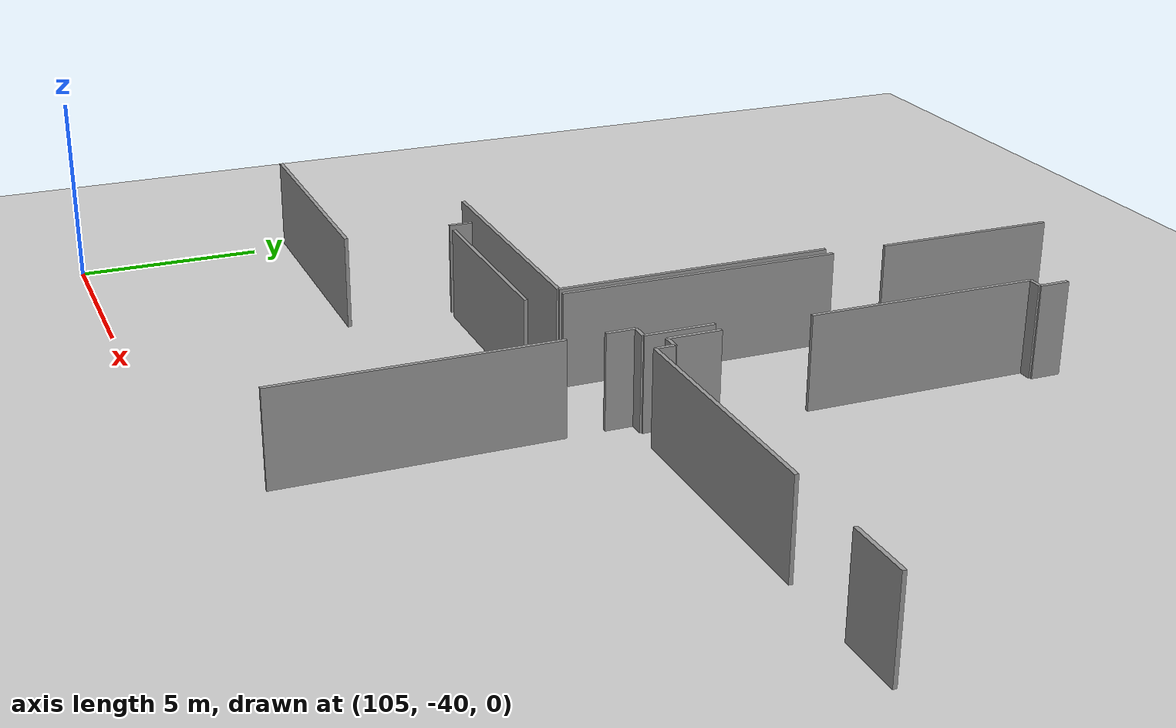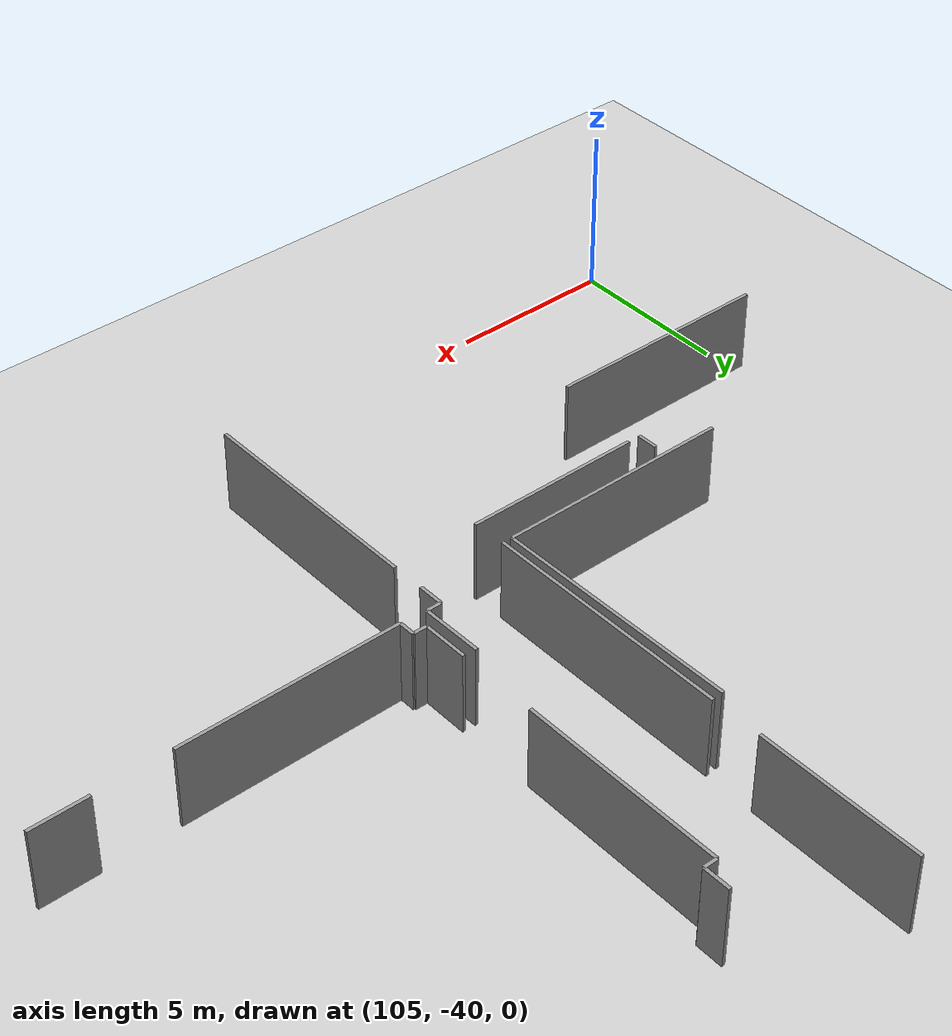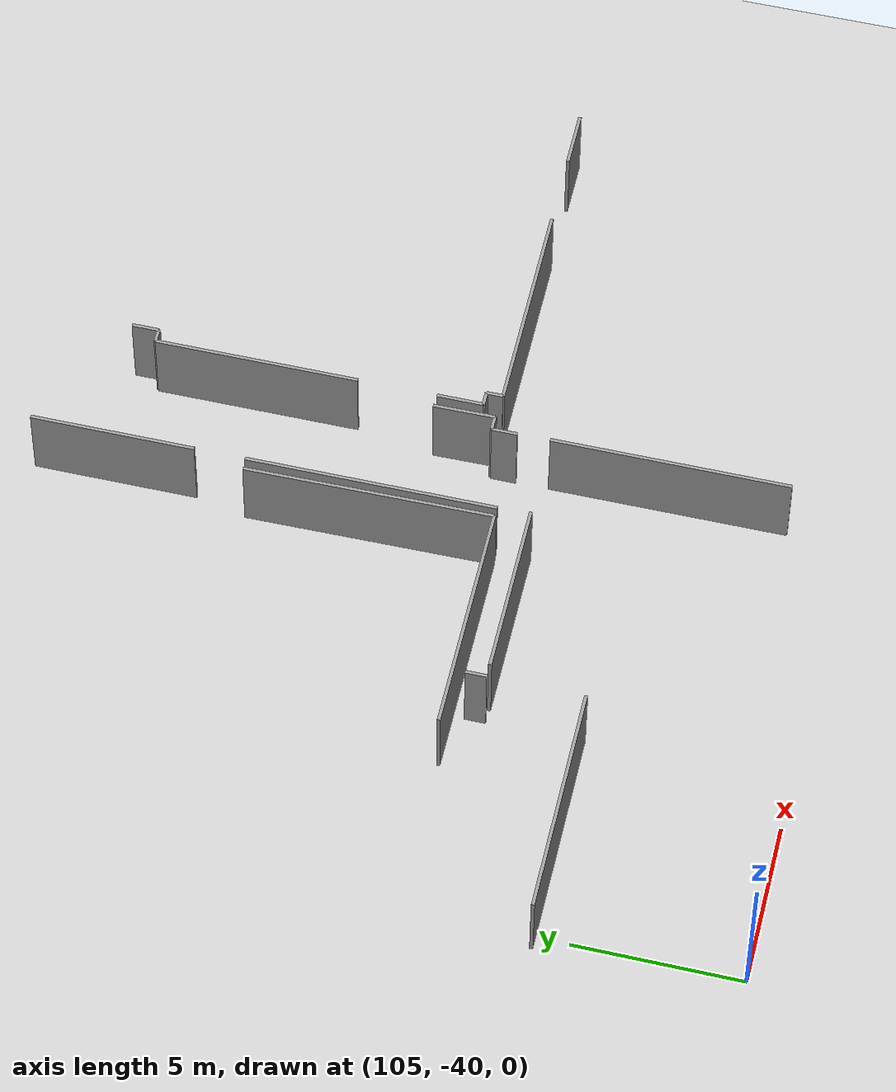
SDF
<sdf version="1.6">
 <world name="default">
  <model name="ground_plane">
   <static>1</static>
   <link name="link">
    <collision name="collision">
     <geometry><plane><normal>0 0 1</normal><size>100 100</size></plane></geometry>
     <surface><friction><ode><mu>100</mu><mu2>50</mu2></ode></friction></surface>
    </collision>
    <visual name="visual">
     <cast_shadows>0</cast_shadows>
     <geometry><plane><normal>0 0 1</normal><size>100 100</size></plane></geometry>
     <material>
      <script><uri>file://media/materials/scripts/gazebo.material</uri><name>Gazebo/Grey</name></script>
     </material>
    </visual>
   </link>
  </model>
  <model name="50015848">
   <static>1</static>
   <link name="Wall_1208">
    <collision name="Wall_1208_Collision">
     <geometry><box><size>1.72027732494 0.1 2.5</size></box></geometry>
     <pose>0.860138662472 0 1.25 0 0 0</pose>
    </collision>
    <visual name="Wall_1208_Visual">
     <pose>0.860138662472 0 1.25 0 0 0</pose>
     <geometry><box><size>1.72027732494 0.1 2.5</size></box></geometry>
     <material>
      <script><uri>file://media/materials/scripts/gazebo.material</uri><name>Gazebo/Grey</name></script>
      <ambient>1 1 1 1</ambient>
     </material>
    </visual>
    <pose>263.464278238 -73.1988150892 0 0 0 3.14159265359</pose>
   </link>
   <link name="Wall_1209">
    <collision name="Wall_1209_Collision">
     <geometry><box><size>6.6426047739 0.1 2.5</size></box></geometry>
     <pose>3.32130238695 0 1.25 0 0 0</pose>
    </collision>
    <visual name="Wall_1209_Visual">
     <pose>3.32130238695 0 1.25 0 0 0</pose>
     <geometry><box><size>6.6426047739 0.1 2.5</size></box></geometry>
     <material>
      <script><uri>file://media/materials/scripts/gazebo.material</uri><name>Gazebo/Grey</name></script>
      <ambient>1 1 1 1</ambient>
     </material>
    </visual>
    <pose>259.498506175 -73.1988150892 0 0 0 3.14159265359</pose>
   </link>
   <link name="Wall_1210">
    <collision name="Wall_1210_Collision">
     <geometry><box><size>0.496038668181 0.1 2.5</size></box></geometry>
     <pose>0.24801933409 0 1.25 0 0 0</pose>
    </collision>
    <visual name="Wall_1210_Visual">
     <pose>0.24801933409 0 1.25 0 0 0</pose>
     <geometry><box><size>0.496038668181 0.1 2.5</size></box></geometry>
     <material>
      <script><uri>file://media/materials/scripts/gazebo.material</uri><name>Gazebo/Grey</name></script>
      <ambient>1 1 1 1</ambient>
     </material>
    </visual>
    <pose>252.855901401 -73.1988150892 0 0 0 1.57079632679</pose>
   </link>
   <link name="Wall_1211">
    <collision name="Wall_1211_Collision">
     <geometry><box><size>0.42118884357 0.1 2.5</size></box></geometry>
     <pose>0.210594421785 0 1.25 0 0 0</pose>
    </collision>
    <visual name="Wall_1211_Visual">
     <pose>0.210594421785 0 1.25 0 0 0</pose>
     <geometry><box><size>0.42118884357 0.1 2.5</size></box></geometry>
     <material>
      <script><uri>file://media/materials/scripts/gazebo.material</uri><name>Gazebo/Grey</name></script>
      <ambient>1 1 1 1</ambient>
     </material>
    </visual>
    <pose>252.855901401 -72.702776421 0 0 0 3.14159265359</pose>
   </link>
   <link name="Wall_1212">
    <collision name="Wall_1212_Collision">
     <geometry><box><size>1.39271419419 0.1 2.5</size></box></geometry>
     <pose>0.696357097095 0 1.25 0 0 0</pose>
    </collision>
    <visual name="Wall_1212_Visual">
     <pose>0.696357097095 0 1.25 0 0 0</pose>
     <geometry><box><size>1.39271419419 0.1 2.5</size></box></geometry>
     <material>
      <script><uri>file://media/materials/scripts/gazebo.material</uri><name>Gazebo/Grey</name></script>
      <ambient>1 1 1 1</ambient>
     </material>
    </visual>
    <pose>252.434712558 -72.702776421 0 0 0 1.57079632679</pose>
   </link>
   <link name="Wall_1213">
    <collision name="Wall_1213_Collision">
     <geometry><box><size>6.13413342298 0.1 2.5</size></box></geometry>
     <pose>3.06706671149 0 1.25 0 0 0</pose>
    </collision>
    <visual name="Wall_1213_Visual">
     <pose>3.06706671149 0 1.25 0 0 0</pose>
     <geometry><box><size>6.13413342298 0.1 2.5</size></box></geometry>
     <material>
      <script><uri>file://media/materials/scripts/gazebo.material</uri><name>Gazebo/Grey</name></script>
      <ambient>1 1 1 1</ambient>
     </material>
    </visual>
    <pose>252.434712558 -68.9285691631 0 0 0 1.57079632679</pose>
   </link>
   <link name="Wall_1214">
    <collision name="Wall_1214_Collision">
     <geometry><box><size>0.405965150429 0.1 2.5</size></box></geometry>
     <pose>0.202982575215 0 1.25 0 0 0</pose>
    </collision>
    <visual name="Wall_1214_Visual">
     <pose>0.202982575215 0 1.25 0 0 0</pose>
     <geometry><box><size>0.405965150429 0.1 2.5</size></box></geometry>
     <material>
      <script><uri>file://media/materials/scripts/gazebo.material</uri><name>Gazebo/Grey</name></script>
      <ambient>1 1 1 1</ambient>
     </material>
    </visual>
    <pose>252.434712558 -62.7944357402 0 0 0 0.0</pose>
   </link>
   <link name="Wall_1215">
    <collision name="Wall_1215_Collision">
     <geometry><box><size>0.812437757296 0.1 2.5</size></box></geometry>
     <pose>0.406218878648 0 1.25 0 0 0</pose>
    </collision>
    <visual name="Wall_1215_Visual">
     <pose>0.406218878648 0 1.25 0 0 0</pose>
     <geometry><box><size>0.812437757296 0.1 2.5</size></box></geometry>
     <material>
      <script><uri>file://media/materials/scripts/gazebo.material</uri><name>Gazebo/Grey</name></script>
      <ambient>1 1 1 1</ambient>
     </material>
    </visual>
    <pose>252.840677708 -62.7944357402 0 0 0 1.57079632679</pose>
   </link>
   <link name="Wall_1221">
    <collision name="Wall_1221_Collision">
     <geometry><box><size>0.441487101092 0.1 2.5</size></box></geometry>
     <pose>0.220743550546 0 1.25 0 0 0</pose>
    </collision>
    <visual name="Wall_1221_Visual">
     <pose>0.220743550546 0 1.25 0 0 0</pose>
     <geometry><box><size>0.441487101092 0.1 2.5</size></box></geometry>
     <material>
      <script><uri>file://media/materials/scripts/gazebo.material</uri><name>Gazebo/Grey</name></script>
      <ambient>1 1 1 1</ambient>
     </material>
    </visual>
    <pose>252.074418487 -73.1328457523 0 0 0 3.14159265359</pose>
   </link>
   <link name="Wall_1222">
    <collision name="Wall_1222_Collision">
     <geometry><box><size>0.767274134311 0.1 2.5</size></box></geometry>
     <pose>0.383637067156 0 1.25 0 0 0</pose>
    </collision>
    <visual name="Wall_1222_Visual">
     <pose>0.383637067156 0 1.25 0 0 0</pose>
     <geometry><box><size>0.767274134311 0.1 2.5</size></box></geometry>
     <material>
      <script><uri>file://media/materials/scripts/gazebo.material</uri><name>Gazebo/Grey</name></script>
      <ambient>1 1 1 1</ambient>
     </material>
    </visual>
    <pose>251.632931386 -73.1328457523 0 0 0 -1.57079632679</pose>
   </link>
   <link name="Wall_1223">
    <collision name="Wall_1223_Collision">
     <geometry><box><size>7.50147479527 0.1 2.5</size></box></geometry>
     <pose>3.75073739764 0 1.25 0 0 0</pose>
    </collision>
    <visual name="Wall_1223_Visual">
     <pose>3.75073739764 0 1.25 0 0 0</pose>
     <geometry><box><size>7.50147479527 0.1 2.5</size></box></geometry>
     <material>
      <script><uri>file://media/materials/scripts/gazebo.material</uri><name>Gazebo/Grey</name></script>
      <ambient>1 1 1 1</ambient>
     </material>
    </visual>
    <pose>248.978934215 -73.9001198866 0 0 0 1.57079632679</pose>
   </link>
   <link name="Wall_1224">
    <collision name="Wall_1224_Collision">
     <geometry><box><size>4.93247657771 0.1 2.5</size></box></geometry>
     <pose>2.46623828886 0 1.25 0 0 0</pose>
    </collision>
    <visual name="Wall_1224_Visual">
     <pose>2.46623828886 0 1.25 0 0 0</pose>
     <geometry><box><size>4.93247657771 0.1 2.5</size></box></geometry>
     <material>
      <script><uri>file://media/materials/scripts/gazebo.material</uri><name>Gazebo/Grey</name></script>
      <ambient>1 1 1 1</ambient>
     </material>
    </visual>
    <pose>248.978934215 -64.8836338956 0 0 0 1.57079632679</pose>
   </link>
   <link name="Wall_1228">
    <collision name="Wall_1228_Collision">
     <geometry><box><size>1.84468965704 0.1 2.5</size></box></geometry>
     <pose>0.92234482852 0 1.25 0 0 0</pose>
    </collision>
    <visual name="Wall_1228_Visual">
     <pose>0.92234482852 0 1.25 0 0 0</pose>
     <geometry><box><size>1.84468965704 0.1 2.5</size></box></geometry>
     <material>
      <script><uri>file://media/materials/scripts/gazebo.material</uri><name>Gazebo/Grey</name></script>
      <ambient>1 1 1 1</ambient>
     </material>
    </visual>
    <pose>252.056657511 -71.2882416 0 0 0 -1.56116801361</pose>
   </link>
   <link name="Wall_1236">
    <collision name="Wall_1236_Collision">
     <geometry><box><size>7.06633089966 0.1 2.5</size></box></geometry>
     <pose>3.53316544983 0 1.25 0 0 0</pose>
    </collision>
    <visual name="Wall_1236_Visual">
     <pose>3.53316544983 0 1.25 0 0 0</pose>
     <geometry><box><size>7.06633089966 0.1 2.5</size></box></geometry>
     <material>
      <script><uri>file://media/materials/scripts/gazebo.material</uri><name>Gazebo/Grey</name></script>
      <ambient>1 1 1 1</ambient>
     </material>
    </visual>
    <pose>248.687146763 -73.8793141726 0 0 0 3.14159265359</pose>
   </link>
   <link name="Wall_1244">
    <collision name="Wall_1244_Collision">
     <geometry><box><size>7.45400233441 0.1 2.5</size></box></geometry>
     <pose>3.7270011672 0 1.25 0 0 0</pose>
    </collision>
    <visual name="Wall_1244_Visual">
     <pose>3.7270011672 0 1.25 0 0 0</pose>
     <geometry><box><size>7.45400233441 0.1 2.5</size></box></geometry>
     <material>
      <script><uri>file://media/materials/scripts/gazebo.material</uri><name>Gazebo/Grey</name></script>
      <ambient>1 1 1 1</ambient>
     </material>
    </visual>
    <pose>248.628789272 -66.4255402825 0 0 0 -1.56296723258</pose>
   </link>
   <link name="Wall_1486">
    <collision name="Wall_1486_Collision">
     <geometry><box><size>0.632290721793 0.1 2.5</size></box></geometry>
     <pose>0.316145360897 0 1.25 0 0 0</pose>
    </collision>
    <visual name="Wall_1486_Visual">
     <pose>0.316145360897 0 1.25 0 0 0</pose>
     <geometry><box><size>0.632290721793 0.1 2.5</size></box></geometry>
     <material>
      <script><uri>file://media/materials/scripts/gazebo.material</uri><name>Gazebo/Grey</name></script>
      <ambient>1 1 1 1</ambient>
     </material>
    </visual>
    <pose>243.346167752 -74.2462051773 0 0 0 -1.57079632679</pose>
   </link>
   <link name="Wall_1487">
    <collision name="Wall_1487_Collision">
     <geometry><box><size>6.90394483949 0.1 2.5</size></box></geometry>
     <pose>3.45197241974 0 1.25 0 0 0</pose>
    </collision>
    <visual name="Wall_1487_Visual">
     <pose>3.45197241974 0 1.25 0 0 0</pose>
     <geometry><box><size>6.90394483949 0.1 2.5</size></box></geometry>
     <material>
      <script><uri>file://media/materials/scripts/gazebo.material</uri><name>Gazebo/Grey</name></script>
      <ambient>1 1 1 1</ambient>
     </material>
    </visual>
    <pose>243.346167752 -77.7331920913 0 0 0 3.14159265359</pose>
   </link>
   <link name="Wall_1639">
    <collision name="Wall_1639_Collision">
     <geometry><box><size>5.32575531719 0.1 2.5</size></box></geometry>
     <pose>2.6628776586 0 1.25 0 0 0</pose>
    </collision>
    <visual name="Wall_1639_Visual">
     <pose>2.6628776586 0 1.25 0 0 0</pose>
     <geometry><box><size>5.32575531719 0.1 2.5</size></box></geometry>
     <material>
      <script><uri>file://media/materials/scripts/gazebo.material</uri><name>Gazebo/Grey</name></script>
      <ambient>1 1 1 1</ambient>
     </material>
    </visual>
    <pose>243.729297363 -74.8757048887 0 0 0 0.0</pose>
   </link>
   <link name="Wall_1640">
    <collision name="Wall_1640_Collision">
     <geometry><box><size>7.15919542782 0.1 2.5</size></box></geometry>
     <pose>3.57959771391 0 1.25 0 0 0</pose>
    </collision>
    <visual name="Wall_1640_Visual">
     <pose>3.57959771391 0 1.25 0 0 0</pose>
     <geometry><box><size>7.15919542782 0.1 2.5</size></box></geometry>
     <material>
      <script><uri>file://media/materials/scripts/gazebo.material</uri><name>Gazebo/Grey</name></script>
      <ambient>1 1 1 1</ambient>
     </material>
    </visual>
    <pose>251.653229643 -74.8757048887 0 0 0 -1.57079632679</pose>
   </link>
   <pose>-131.8 43.7717730528 0 0 0 0</pose>
  </model>
 </world>
</sdf>
